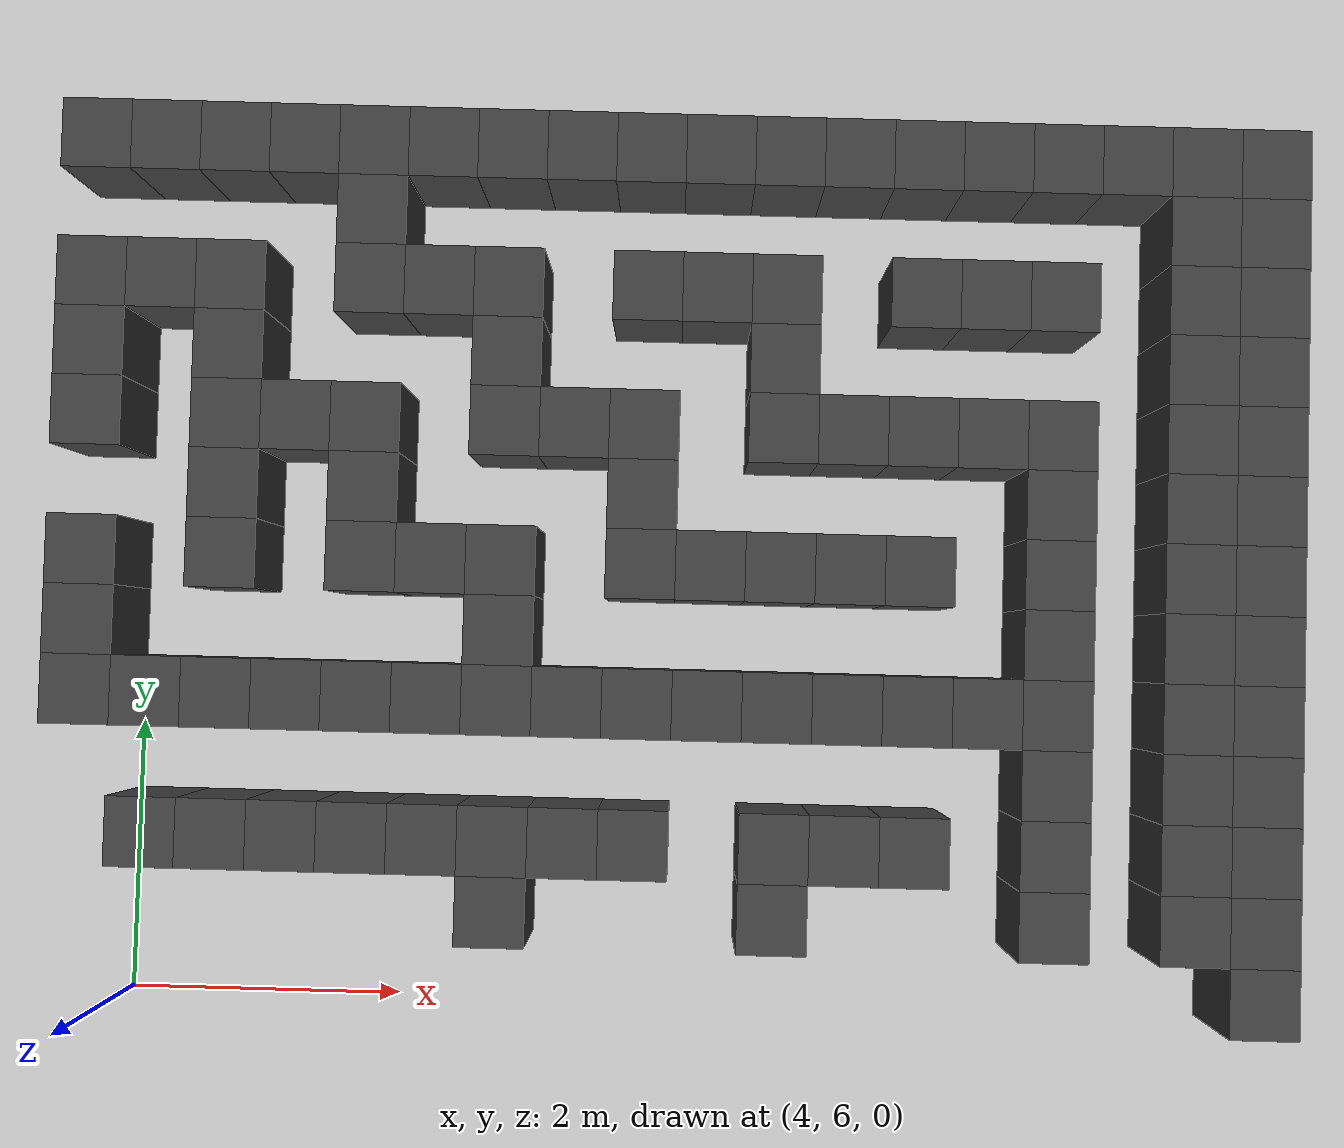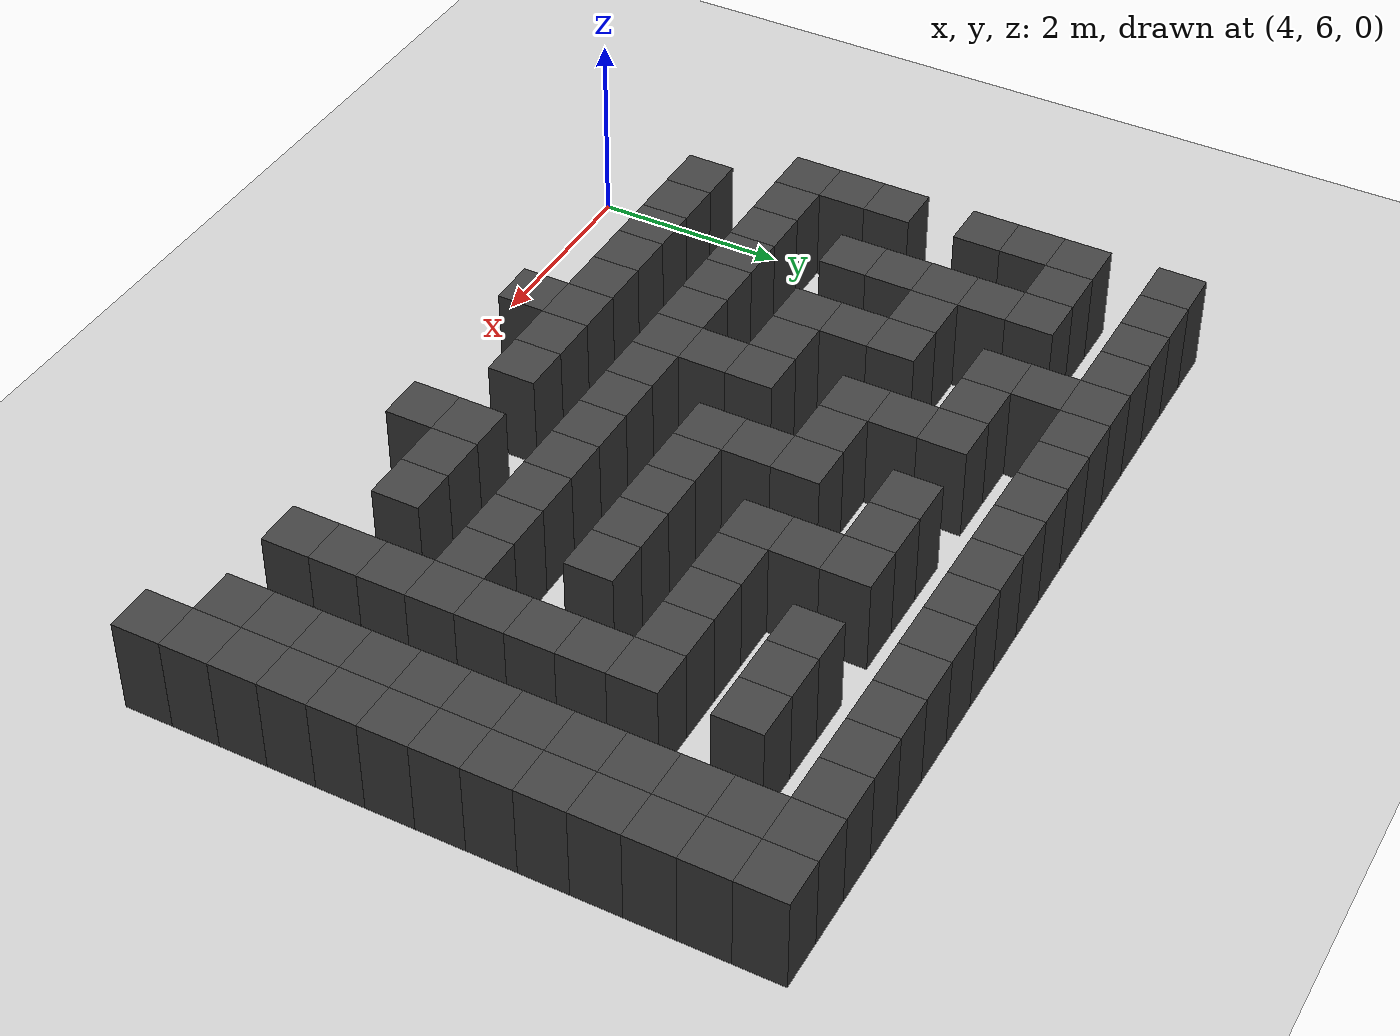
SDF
<sdf version="1.7">
 <world name="map_18914">
  <model name="ground_plane">
   <static>true</static>
   <link name="link">
    <collision name="collision">
     <geometry><plane><normal>0 0 1</normal><size>200 200</size></plane></geometry>
    </collision>
    <visual name="visual">
     <geometry><plane><normal>0 0 1</normal><size>200 200</size></plane></geometry>
     <material><ambient>0.8 0.8 0.8 1</ambient><diffuse>0.8 0.8 0.8 1</diffuse></material>
    </visual>
   </link>
  </model>
  <model name="maze_environment">
   <static>true</static>
   <link name="wall_32">
    <pose>3.750 12.250 0.500 0 0 0</pose>
    <collision name="col"><geometry><box><size>0.5 0.5 1.0</size></box></geometry></collision>
    <visual name="vis">
     <geometry><box><size>0.5 0.5 1.0</size></box></geometry>
     <material><ambient>0.15 0.15 0.15 1</ambient><diffuse>0.25 0.25 0.25 1</diffuse></material>
    </visual>
   </link>
   <link name="wall_33">
    <pose>4.250 12.250 0.500 0 0 0</pose>
    <collision name="col"><geometry><box><size>0.5 0.5 1.0</size></box></geometry></collision>
    <visual name="vis">
     <geometry><box><size>0.5 0.5 1.0</size></box></geometry>
     <material><ambient>0.15 0.15 0.15 1</ambient><diffuse>0.25 0.25 0.25 1</diffuse></material>
    </visual>
   </link>
   <link name="wall_34">
    <pose>4.750 12.250 0.500 0 0 0</pose>
    <collision name="col"><geometry><box><size>0.5 0.5 1.0</size></box></geometry></collision>
    <visual name="vis">
     <geometry><box><size>0.5 0.5 1.0</size></box></geometry>
     <material><ambient>0.15 0.15 0.15 1</ambient><diffuse>0.25 0.25 0.25 1</diffuse></material>
    </visual>
   </link>
   <link name="wall_35">
    <pose>5.250 12.250 0.500 0 0 0</pose>
    <collision name="col"><geometry><box><size>0.5 0.5 1.0</size></box></geometry></collision>
    <visual name="vis">
     <geometry><box><size>0.5 0.5 1.0</size></box></geometry>
     <material><ambient>0.15 0.15 0.15 1</ambient><diffuse>0.25 0.25 0.25 1</diffuse></material>
    </visual>
   </link>
   <link name="wall_36">
    <pose>5.750 12.250 0.500 0 0 0</pose>
    <collision name="col"><geometry><box><size>0.5 0.5 1.0</size></box></geometry></collision>
    <visual name="vis">
     <geometry><box><size>0.5 0.5 1.0</size></box></geometry>
     <material><ambient>0.15 0.15 0.15 1</ambient><diffuse>0.25 0.25 0.25 1</diffuse></material>
    </visual>
   </link>
   <link name="wall_37">
    <pose>6.250 12.250 0.500 0 0 0</pose>
    <collision name="col"><geometry><box><size>0.5 0.5 1.0</size></box></geometry></collision>
    <visual name="vis">
     <geometry><box><size>0.5 0.5 1.0</size></box></geometry>
     <material><ambient>0.15 0.15 0.15 1</ambient><diffuse>0.25 0.25 0.25 1</diffuse></material>
    </visual>
   </link>
   <link name="wall_38">
    <pose>6.750 12.250 0.500 0 0 0</pose>
    <collision name="col"><geometry><box><size>0.5 0.5 1.0</size></box></geometry></collision>
    <visual name="vis">
     <geometry><box><size>0.5 0.5 1.0</size></box></geometry>
     <material><ambient>0.15 0.15 0.15 1</ambient><diffuse>0.25 0.25 0.25 1</diffuse></material>
    </visual>
   </link>
   <link name="wall_39">
    <pose>7.250 12.250 0.500 0 0 0</pose>
    <collision name="col"><geometry><box><size>0.5 0.5 1.0</size></box></geometry></collision>
    <visual name="vis">
     <geometry><box><size>0.5 0.5 1.0</size></box></geometry>
     <material><ambient>0.15 0.15 0.15 1</ambient><diffuse>0.25 0.25 0.25 1</diffuse></material>
    </visual>
   </link>
   <link name="wall_40">
    <pose>7.750 12.250 0.500 0 0 0</pose>
    <collision name="col"><geometry><box><size>0.5 0.5 1.0</size></box></geometry></collision>
    <visual name="vis">
     <geometry><box><size>0.5 0.5 1.0</size></box></geometry>
     <material><ambient>0.15 0.15 0.15 1</ambient><diffuse>0.25 0.25 0.25 1</diffuse></material>
    </visual>
   </link>
   <link name="wall_41">
    <pose>8.250 12.250 0.500 0 0 0</pose>
    <collision name="col"><geometry><box><size>0.5 0.5 1.0</size></box></geometry></collision>
    <visual name="vis">
     <geometry><box><size>0.5 0.5 1.0</size></box></geometry>
     <material><ambient>0.15 0.15 0.15 1</ambient><diffuse>0.25 0.25 0.25 1</diffuse></material>
    </visual>
   </link>
   <link name="wall_42">
    <pose>8.750 12.250 0.500 0 0 0</pose>
    <collision name="col"><geometry><box><size>0.5 0.5 1.0</size></box></geometry></collision>
    <visual name="vis">
     <geometry><box><size>0.5 0.5 1.0</size></box></geometry>
     <material><ambient>0.15 0.15 0.15 1</ambient><diffuse>0.25 0.25 0.25 1</diffuse></material>
    </visual>
   </link>
   <link name="wall_43">
    <pose>9.250 12.250 0.500 0 0 0</pose>
    <collision name="col"><geometry><box><size>0.5 0.5 1.0</size></box></geometry></collision>
    <visual name="vis">
     <geometry><box><size>0.5 0.5 1.0</size></box></geometry>
     <material><ambient>0.15 0.15 0.15 1</ambient><diffuse>0.25 0.25 0.25 1</diffuse></material>
    </visual>
   </link>
   <link name="wall_44">
    <pose>9.750 12.250 0.500 0 0 0</pose>
    <collision name="col"><geometry><box><size>0.5 0.5 1.0</size></box></geometry></collision>
    <visual name="vis">
     <geometry><box><size>0.5 0.5 1.0</size></box></geometry>
     <material><ambient>0.15 0.15 0.15 1</ambient><diffuse>0.25 0.25 0.25 1</diffuse></material>
    </visual>
   </link>
   <link name="wall_45">
    <pose>10.250 12.250 0.500 0 0 0</pose>
    <collision name="col"><geometry><box><size>0.5 0.5 1.0</size></box></geometry></collision>
    <visual name="vis">
     <geometry><box><size>0.5 0.5 1.0</size></box></geometry>
     <material><ambient>0.15 0.15 0.15 1</ambient><diffuse>0.25 0.25 0.25 1</diffuse></material>
    </visual>
   </link>
   <link name="wall_46">
    <pose>10.750 12.250 0.500 0 0 0</pose>
    <collision name="col"><geometry><box><size>0.5 0.5 1.0</size></box></geometry></collision>
    <visual name="vis">
     <geometry><box><size>0.5 0.5 1.0</size></box></geometry>
     <material><ambient>0.15 0.15 0.15 1</ambient><diffuse>0.25 0.25 0.25 1</diffuse></material>
    </visual>
   </link>
   <link name="wall_47">
    <pose>11.250 12.250 0.500 0 0 0</pose>
    <collision name="col"><geometry><box><size>0.5 0.5 1.0</size></box></geometry></collision>
    <visual name="vis">
     <geometry><box><size>0.5 0.5 1.0</size></box></geometry>
     <material><ambient>0.15 0.15 0.15 1</ambient><diffuse>0.25 0.25 0.25 1</diffuse></material>
    </visual>
   </link>
   <link name="wall_48">
    <pose>11.750 12.250 0.500 0 0 0</pose>
    <collision name="col"><geometry><box><size>0.5 0.5 1.0</size></box></geometry></collision>
    <visual name="vis">
     <geometry><box><size>0.5 0.5 1.0</size></box></geometry>
     <material><ambient>0.15 0.15 0.15 1</ambient><diffuse>0.25 0.25 0.25 1</diffuse></material>
    </visual>
   </link>
   <link name="wall_49">
    <pose>12.250 12.250 0.500 0 0 0</pose>
    <collision name="col"><geometry><box><size>0.5 0.5 1.0</size></box></geometry></collision>
    <visual name="vis">
     <geometry><box><size>0.5 0.5 1.0</size></box></geometry>
     <material><ambient>0.15 0.15 0.15 1</ambient><diffuse>0.25 0.25 0.25 1</diffuse></material>
    </visual>
   </link>
   <link name="wall_54">
    <pose>5.750 11.750 0.500 0 0 0</pose>
    <collision name="col"><geometry><box><size>0.5 0.5 1.0</size></box></geometry></collision>
    <visual name="vis">
     <geometry><box><size>0.5 0.5 1.0</size></box></geometry>
     <material><ambient>0.15 0.15 0.15 1</ambient><diffuse>0.25 0.25 0.25 1</diffuse></material>
    </visual>
   </link>
   <link name="wall_55">
    <pose>11.750 11.750 0.500 0 0 0</pose>
    <collision name="col"><geometry><box><size>0.5 0.5 1.0</size></box></geometry></collision>
    <visual name="vis">
     <geometry><box><size>0.5 0.5 1.0</size></box></geometry>
     <material><ambient>0.15 0.15 0.15 1</ambient><diffuse>0.25 0.25 0.25 1</diffuse></material>
    </visual>
   </link>
   <link name="wall_56">
    <pose>12.250 11.750 0.500 0 0 0</pose>
    <collision name="col"><geometry><box><size>0.5 0.5 1.0</size></box></geometry></collision>
    <visual name="vis">
     <geometry><box><size>0.5 0.5 1.0</size></box></geometry>
     <material><ambient>0.15 0.15 0.15 1</ambient><diffuse>0.25 0.25 0.25 1</diffuse></material>
    </visual>
   </link>
   <link name="wall_81">
    <pose>3.750 11.250 0.500 0 0 0</pose>
    <collision name="col"><geometry><box><size>0.5 0.5 1.0</size></box></geometry></collision>
    <visual name="vis">
     <geometry><box><size>0.5 0.5 1.0</size></box></geometry>
     <material><ambient>0.15 0.15 0.15 1</ambient><diffuse>0.25 0.25 0.25 1</diffuse></material>
    </visual>
   </link>
   <link name="wall_82">
    <pose>4.250 11.250 0.500 0 0 0</pose>
    <collision name="col"><geometry><box><size>0.5 0.5 1.0</size></box></geometry></collision>
    <visual name="vis">
     <geometry><box><size>0.5 0.5 1.0</size></box></geometry>
     <material><ambient>0.15 0.15 0.15 1</ambient><diffuse>0.25 0.25 0.25 1</diffuse></material>
    </visual>
   </link>
   <link name="wall_83">
    <pose>4.750 11.250 0.500 0 0 0</pose>
    <collision name="col"><geometry><box><size>0.5 0.5 1.0</size></box></geometry></collision>
    <visual name="vis">
     <geometry><box><size>0.5 0.5 1.0</size></box></geometry>
     <material><ambient>0.15 0.15 0.15 1</ambient><diffuse>0.25 0.25 0.25 1</diffuse></material>
    </visual>
   </link>
   <link name="wall_84">
    <pose>5.750 11.250 0.500 0 0 0</pose>
    <collision name="col"><geometry><box><size>0.5 0.5 1.0</size></box></geometry></collision>
    <visual name="vis">
     <geometry><box><size>0.5 0.5 1.0</size></box></geometry>
     <material><ambient>0.15 0.15 0.15 1</ambient><diffuse>0.25 0.25 0.25 1</diffuse></material>
    </visual>
   </link>
   <link name="wall_85">
    <pose>6.250 11.250 0.500 0 0 0</pose>
    <collision name="col"><geometry><box><size>0.5 0.5 1.0</size></box></geometry></collision>
    <visual name="vis">
     <geometry><box><size>0.5 0.5 1.0</size></box></geometry>
     <material><ambient>0.15 0.15 0.15 1</ambient><diffuse>0.25 0.25 0.25 1</diffuse></material>
    </visual>
   </link>
   <link name="wall_86">
    <pose>6.750 11.250 0.500 0 0 0</pose>
    <collision name="col"><geometry><box><size>0.5 0.5 1.0</size></box></geometry></collision>
    <visual name="vis">
     <geometry><box><size>0.5 0.5 1.0</size></box></geometry>
     <material><ambient>0.15 0.15 0.15 1</ambient><diffuse>0.25 0.25 0.25 1</diffuse></material>
    </visual>
   </link>
   <link name="wall_87">
    <pose>7.750 11.250 0.500 0 0 0</pose>
    <collision name="col"><geometry><box><size>0.5 0.5 1.0</size></box></geometry></collision>
    <visual name="vis">
     <geometry><box><size>0.5 0.5 1.0</size></box></geometry>
     <material><ambient>0.15 0.15 0.15 1</ambient><diffuse>0.25 0.25 0.25 1</diffuse></material>
    </visual>
   </link>
   <link name="wall_88">
    <pose>8.250 11.250 0.500 0 0 0</pose>
    <collision name="col"><geometry><box><size>0.5 0.5 1.0</size></box></geometry></collision>
    <visual name="vis">
     <geometry><box><size>0.5 0.5 1.0</size></box></geometry>
     <material><ambient>0.15 0.15 0.15 1</ambient><diffuse>0.25 0.25 0.25 1</diffuse></material>
    </visual>
   </link>
   <link name="wall_89">
    <pose>8.750 11.250 0.500 0 0 0</pose>
    <collision name="col"><geometry><box><size>0.5 0.5 1.0</size></box></geometry></collision>
    <visual name="vis">
     <geometry><box><size>0.5 0.5 1.0</size></box></geometry>
     <material><ambient>0.15 0.15 0.15 1</ambient><diffuse>0.25 0.25 0.25 1</diffuse></material>
    </visual>
   </link>
   <link name="wall_90">
    <pose>9.750 11.250 0.500 0 0 0</pose>
    <collision name="col"><geometry><box><size>0.5 0.5 1.0</size></box></geometry></collision>
    <visual name="vis">
     <geometry><box><size>0.5 0.5 1.0</size></box></geometry>
     <material><ambient>0.15 0.15 0.15 1</ambient><diffuse>0.25 0.25 0.25 1</diffuse></material>
    </visual>
   </link>
   <link name="wall_91">
    <pose>10.250 11.250 0.500 0 0 0</pose>
    <collision name="col"><geometry><box><size>0.5 0.5 1.0</size></box></geometry></collision>
    <visual name="vis">
     <geometry><box><size>0.5 0.5 1.0</size></box></geometry>
     <material><ambient>0.15 0.15 0.15 1</ambient><diffuse>0.25 0.25 0.25 1</diffuse></material>
    </visual>
   </link>
   <link name="wall_92">
    <pose>10.750 11.250 0.500 0 0 0</pose>
    <collision name="col"><geometry><box><size>0.5 0.5 1.0</size></box></geometry></collision>
    <visual name="vis">
     <geometry><box><size>0.5 0.5 1.0</size></box></geometry>
     <material><ambient>0.15 0.15 0.15 1</ambient><diffuse>0.25 0.25 0.25 1</diffuse></material>
    </visual>
   </link>
   <link name="wall_93">
    <pose>11.750 11.250 0.500 0 0 0</pose>
    <collision name="col"><geometry><box><size>0.5 0.5 1.0</size></box></geometry></collision>
    <visual name="vis">
     <geometry><box><size>0.5 0.5 1.0</size></box></geometry>
     <material><ambient>0.15 0.15 0.15 1</ambient><diffuse>0.25 0.25 0.25 1</diffuse></material>
    </visual>
   </link>
   <link name="wall_94">
    <pose>12.250 11.250 0.500 0 0 0</pose>
    <collision name="col"><geometry><box><size>0.5 0.5 1.0</size></box></geometry></collision>
    <visual name="vis">
     <geometry><box><size>0.5 0.5 1.0</size></box></geometry>
     <material><ambient>0.15 0.15 0.15 1</ambient><diffuse>0.25 0.25 0.25 1</diffuse></material>
    </visual>
   </link>
   <link name="wall_102">
    <pose>3.750 10.750 0.500 0 0 0</pose>
    <collision name="col"><geometry><box><size>0.5 0.5 1.0</size></box></geometry></collision>
    <visual name="vis">
     <geometry><box><size>0.5 0.5 1.0</size></box></geometry>
     <material><ambient>0.15 0.15 0.15 1</ambient><diffuse>0.25 0.25 0.25 1</diffuse></material>
    </visual>
   </link>
   <link name="wall_103">
    <pose>4.750 10.750 0.500 0 0 0</pose>
    <collision name="col"><geometry><box><size>0.5 0.5 1.0</size></box></geometry></collision>
    <visual name="vis">
     <geometry><box><size>0.5 0.5 1.0</size></box></geometry>
     <material><ambient>0.15 0.15 0.15 1</ambient><diffuse>0.25 0.25 0.25 1</diffuse></material>
    </visual>
   </link>
   <link name="wall_104">
    <pose>6.750 10.750 0.500 0 0 0</pose>
    <collision name="col"><geometry><box><size>0.5 0.5 1.0</size></box></geometry></collision>
    <visual name="vis">
     <geometry><box><size>0.5 0.5 1.0</size></box></geometry>
     <material><ambient>0.15 0.15 0.15 1</ambient><diffuse>0.25 0.25 0.25 1</diffuse></material>
    </visual>
   </link>
   <link name="wall_105">
    <pose>8.750 10.750 0.500 0 0 0</pose>
    <collision name="col"><geometry><box><size>0.5 0.5 1.0</size></box></geometry></collision>
    <visual name="vis">
     <geometry><box><size>0.5 0.5 1.0</size></box></geometry>
     <material><ambient>0.15 0.15 0.15 1</ambient><diffuse>0.25 0.25 0.25 1</diffuse></material>
    </visual>
   </link>
   <link name="wall_106">
    <pose>11.750 10.750 0.500 0 0 0</pose>
    <collision name="col"><geometry><box><size>0.5 0.5 1.0</size></box></geometry></collision>
    <visual name="vis">
     <geometry><box><size>0.5 0.5 1.0</size></box></geometry>
     <material><ambient>0.15 0.15 0.15 1</ambient><diffuse>0.25 0.25 0.25 1</diffuse></material>
    </visual>
   </link>
   <link name="wall_107">
    <pose>12.250 10.750 0.500 0 0 0</pose>
    <collision name="col"><geometry><box><size>0.5 0.5 1.0</size></box></geometry></collision>
    <visual name="vis">
     <geometry><box><size>0.5 0.5 1.0</size></box></geometry>
     <material><ambient>0.15 0.15 0.15 1</ambient><diffuse>0.25 0.25 0.25 1</diffuse></material>
    </visual>
   </link>
   <link name="wall_135">
    <pose>3.750 10.250 0.500 0 0 0</pose>
    <collision name="col"><geometry><box><size>0.5 0.5 1.0</size></box></geometry></collision>
    <visual name="vis">
     <geometry><box><size>0.5 0.5 1.0</size></box></geometry>
     <material><ambient>0.15 0.15 0.15 1</ambient><diffuse>0.25 0.25 0.25 1</diffuse></material>
    </visual>
   </link>
   <link name="wall_136">
    <pose>4.750 10.250 0.500 0 0 0</pose>
    <collision name="col"><geometry><box><size>0.5 0.5 1.0</size></box></geometry></collision>
    <visual name="vis">
     <geometry><box><size>0.5 0.5 1.0</size></box></geometry>
     <material><ambient>0.15 0.15 0.15 1</ambient><diffuse>0.25 0.25 0.25 1</diffuse></material>
    </visual>
   </link>
   <link name="wall_137">
    <pose>5.250 10.250 0.500 0 0 0</pose>
    <collision name="col"><geometry><box><size>0.5 0.5 1.0</size></box></geometry></collision>
    <visual name="vis">
     <geometry><box><size>0.5 0.5 1.0</size></box></geometry>
     <material><ambient>0.15 0.15 0.15 1</ambient><diffuse>0.25 0.25 0.25 1</diffuse></material>
    </visual>
   </link>
   <link name="wall_138">
    <pose>5.750 10.250 0.500 0 0 0</pose>
    <collision name="col"><geometry><box><size>0.5 0.5 1.0</size></box></geometry></collision>
    <visual name="vis">
     <geometry><box><size>0.5 0.5 1.0</size></box></geometry>
     <material><ambient>0.15 0.15 0.15 1</ambient><diffuse>0.25 0.25 0.25 1</diffuse></material>
    </visual>
   </link>
   <link name="wall_139">
    <pose>6.750 10.250 0.500 0 0 0</pose>
    <collision name="col"><geometry><box><size>0.5 0.5 1.0</size></box></geometry></collision>
    <visual name="vis">
     <geometry><box><size>0.5 0.5 1.0</size></box></geometry>
     <material><ambient>0.15 0.15 0.15 1</ambient><diffuse>0.25 0.25 0.25 1</diffuse></material>
    </visual>
   </link>
   <link name="wall_140">
    <pose>7.250 10.250 0.500 0 0 0</pose>
    <collision name="col"><geometry><box><size>0.5 0.5 1.0</size></box></geometry></collision>
    <visual name="vis">
     <geometry><box><size>0.5 0.5 1.0</size></box></geometry>
     <material><ambient>0.15 0.15 0.15 1</ambient><diffuse>0.25 0.25 0.25 1</diffuse></material>
    </visual>
   </link>
   <link name="wall_141">
    <pose>7.750 10.250 0.500 0 0 0</pose>
    <collision name="col"><geometry><box><size>0.5 0.5 1.0</size></box></geometry></collision>
    <visual name="vis">
     <geometry><box><size>0.5 0.5 1.0</size></box></geometry>
     <material><ambient>0.15 0.15 0.15 1</ambient><diffuse>0.25 0.25 0.25 1</diffuse></material>
    </visual>
   </link>
   <link name="wall_142">
    <pose>8.750 10.250 0.500 0 0 0</pose>
    <collision name="col"><geometry><box><size>0.5 0.5 1.0</size></box></geometry></collision>
    <visual name="vis">
     <geometry><box><size>0.5 0.5 1.0</size></box></geometry>
     <material><ambient>0.15 0.15 0.15 1</ambient><diffuse>0.25 0.25 0.25 1</diffuse></material>
    </visual>
   </link>
   <link name="wall_143">
    <pose>9.250 10.250 0.500 0 0 0</pose>
    <collision name="col"><geometry><box><size>0.5 0.5 1.0</size></box></geometry></collision>
    <visual name="vis">
     <geometry><box><size>0.5 0.5 1.0</size></box></geometry>
     <material><ambient>0.15 0.15 0.15 1</ambient><diffuse>0.25 0.25 0.25 1</diffuse></material>
    </visual>
   </link>
   <link name="wall_144">
    <pose>9.750 10.250 0.500 0 0 0</pose>
    <collision name="col"><geometry><box><size>0.5 0.5 1.0</size></box></geometry></collision>
    <visual name="vis">
     <geometry><box><size>0.5 0.5 1.0</size></box></geometry>
     <material><ambient>0.15 0.15 0.15 1</ambient><diffuse>0.25 0.25 0.25 1</diffuse></material>
    </visual>
   </link>
   <link name="wall_145">
    <pose>10.250 10.250 0.500 0 0 0</pose>
    <collision name="col"><geometry><box><size>0.5 0.5 1.0</size></box></geometry></collision>
    <visual name="vis">
     <geometry><box><size>0.5 0.5 1.0</size></box></geometry>
     <material><ambient>0.15 0.15 0.15 1</ambient><diffuse>0.25 0.25 0.25 1</diffuse></material>
    </visual>
   </link>
   <link name="wall_146">
    <pose>10.750 10.250 0.500 0 0 0</pose>
    <collision name="col"><geometry><box><size>0.5 0.5 1.0</size></box></geometry></collision>
    <visual name="vis">
     <geometry><box><size>0.5 0.5 1.0</size></box></geometry>
     <material><ambient>0.15 0.15 0.15 1</ambient><diffuse>0.25 0.25 0.25 1</diffuse></material>
    </visual>
   </link>
   <link name="wall_147">
    <pose>11.750 10.250 0.500 0 0 0</pose>
    <collision name="col"><geometry><box><size>0.5 0.5 1.0</size></box></geometry></collision>
    <visual name="vis">
     <geometry><box><size>0.5 0.5 1.0</size></box></geometry>
     <material><ambient>0.15 0.15 0.15 1</ambient><diffuse>0.25 0.25 0.25 1</diffuse></material>
    </visual>
   </link>
   <link name="wall_148">
    <pose>12.250 10.250 0.500 0 0 0</pose>
    <collision name="col"><geometry><box><size>0.5 0.5 1.0</size></box></geometry></collision>
    <visual name="vis">
     <geometry><box><size>0.5 0.5 1.0</size></box></geometry>
     <material><ambient>0.15 0.15 0.15 1</ambient><diffuse>0.25 0.25 0.25 1</diffuse></material>
    </visual>
   </link>
   <link name="wall_153">
    <pose>4.750 9.750 0.500 0 0 0</pose>
    <collision name="col"><geometry><box><size>0.5 0.5 1.0</size></box></geometry></collision>
    <visual name="vis">
     <geometry><box><size>0.5 0.5 1.0</size></box></geometry>
     <material><ambient>0.15 0.15 0.15 1</ambient><diffuse>0.25 0.25 0.25 1</diffuse></material>
    </visual>
   </link>
   <link name="wall_154">
    <pose>5.750 9.750 0.500 0 0 0</pose>
    <collision name="col"><geometry><box><size>0.5 0.5 1.0</size></box></geometry></collision>
    <visual name="vis">
     <geometry><box><size>0.5 0.5 1.0</size></box></geometry>
     <material><ambient>0.15 0.15 0.15 1</ambient><diffuse>0.25 0.25 0.25 1</diffuse></material>
    </visual>
   </link>
   <link name="wall_155">
    <pose>7.750 9.750 0.500 0 0 0</pose>
    <collision name="col"><geometry><box><size>0.5 0.5 1.0</size></box></geometry></collision>
    <visual name="vis">
     <geometry><box><size>0.5 0.5 1.0</size></box></geometry>
     <material><ambient>0.15 0.15 0.15 1</ambient><diffuse>0.25 0.25 0.25 1</diffuse></material>
    </visual>
   </link>
   <link name="wall_156">
    <pose>10.750 9.750 0.500 0 0 0</pose>
    <collision name="col"><geometry><box><size>0.5 0.5 1.0</size></box></geometry></collision>
    <visual name="vis">
     <geometry><box><size>0.5 0.5 1.0</size></box></geometry>
     <material><ambient>0.15 0.15 0.15 1</ambient><diffuse>0.25 0.25 0.25 1</diffuse></material>
    </visual>
   </link>
   <link name="wall_157">
    <pose>11.750 9.750 0.500 0 0 0</pose>
    <collision name="col"><geometry><box><size>0.5 0.5 1.0</size></box></geometry></collision>
    <visual name="vis">
     <geometry><box><size>0.5 0.5 1.0</size></box></geometry>
     <material><ambient>0.15 0.15 0.15 1</ambient><diffuse>0.25 0.25 0.25 1</diffuse></material>
    </visual>
   </link>
   <link name="wall_158">
    <pose>12.250 9.750 0.500 0 0 0</pose>
    <collision name="col"><geometry><box><size>0.5 0.5 1.0</size></box></geometry></collision>
    <visual name="vis">
     <geometry><box><size>0.5 0.5 1.0</size></box></geometry>
     <material><ambient>0.15 0.15 0.15 1</ambient><diffuse>0.25 0.25 0.25 1</diffuse></material>
    </visual>
   </link>
   <link name="wall_184">
    <pose>3.750 9.250 0.500 0 0 0</pose>
    <collision name="col"><geometry><box><size>0.5 0.5 1.0</size></box></geometry></collision>
    <visual name="vis">
     <geometry><box><size>0.5 0.5 1.0</size></box></geometry>
     <material><ambient>0.15 0.15 0.15 1</ambient><diffuse>0.25 0.25 0.25 1</diffuse></material>
    </visual>
   </link>
   <link name="wall_185">
    <pose>4.750 9.250 0.500 0 0 0</pose>
    <collision name="col"><geometry><box><size>0.5 0.5 1.0</size></box></geometry></collision>
    <visual name="vis">
     <geometry><box><size>0.5 0.5 1.0</size></box></geometry>
     <material><ambient>0.15 0.15 0.15 1</ambient><diffuse>0.25 0.25 0.25 1</diffuse></material>
    </visual>
   </link>
   <link name="wall_186">
    <pose>5.750 9.250 0.500 0 0 0</pose>
    <collision name="col"><geometry><box><size>0.5 0.5 1.0</size></box></geometry></collision>
    <visual name="vis">
     <geometry><box><size>0.5 0.5 1.0</size></box></geometry>
     <material><ambient>0.15 0.15 0.15 1</ambient><diffuse>0.25 0.25 0.25 1</diffuse></material>
    </visual>
   </link>
   <link name="wall_187">
    <pose>6.250 9.250 0.500 0 0 0</pose>
    <collision name="col"><geometry><box><size>0.5 0.5 1.0</size></box></geometry></collision>
    <visual name="vis">
     <geometry><box><size>0.5 0.5 1.0</size></box></geometry>
     <material><ambient>0.15 0.15 0.15 1</ambient><diffuse>0.25 0.25 0.25 1</diffuse></material>
    </visual>
   </link>
   <link name="wall_188">
    <pose>6.750 9.250 0.500 0 0 0</pose>
    <collision name="col"><geometry><box><size>0.5 0.5 1.0</size></box></geometry></collision>
    <visual name="vis">
     <geometry><box><size>0.5 0.5 1.0</size></box></geometry>
     <material><ambient>0.15 0.15 0.15 1</ambient><diffuse>0.25 0.25 0.25 1</diffuse></material>
    </visual>
   </link>
   <link name="wall_189">
    <pose>7.750 9.250 0.500 0 0 0</pose>
    <collision name="col"><geometry><box><size>0.5 0.5 1.0</size></box></geometry></collision>
    <visual name="vis">
     <geometry><box><size>0.5 0.5 1.0</size></box></geometry>
     <material><ambient>0.15 0.15 0.15 1</ambient><diffuse>0.25 0.25 0.25 1</diffuse></material>
    </visual>
   </link>
   <link name="wall_190">
    <pose>8.250 9.250 0.500 0 0 0</pose>
    <collision name="col"><geometry><box><size>0.5 0.5 1.0</size></box></geometry></collision>
    <visual name="vis">
     <geometry><box><size>0.5 0.5 1.0</size></box></geometry>
     <material><ambient>0.15 0.15 0.15 1</ambient><diffuse>0.25 0.25 0.25 1</diffuse></material>
    </visual>
   </link>
   <link name="wall_191">
    <pose>8.750 9.250 0.500 0 0 0</pose>
    <collision name="col"><geometry><box><size>0.5 0.5 1.0</size></box></geometry></collision>
    <visual name="vis">
     <geometry><box><size>0.5 0.5 1.0</size></box></geometry>
     <material><ambient>0.15 0.15 0.15 1</ambient><diffuse>0.25 0.25 0.25 1</diffuse></material>
    </visual>
   </link>
   <link name="wall_192">
    <pose>9.250 9.250 0.500 0 0 0</pose>
    <collision name="col"><geometry><box><size>0.5 0.5 1.0</size></box></geometry></collision>
    <visual name="vis">
     <geometry><box><size>0.5 0.5 1.0</size></box></geometry>
     <material><ambient>0.15 0.15 0.15 1</ambient><diffuse>0.25 0.25 0.25 1</diffuse></material>
    </visual>
   </link>
   <link name="wall_193">
    <pose>9.750 9.250 0.500 0 0 0</pose>
    <collision name="col"><geometry><box><size>0.5 0.5 1.0</size></box></geometry></collision>
    <visual name="vis">
     <geometry><box><size>0.5 0.5 1.0</size></box></geometry>
     <material><ambient>0.15 0.15 0.15 1</ambient><diffuse>0.25 0.25 0.25 1</diffuse></material>
    </visual>
   </link>
   <link name="wall_194">
    <pose>10.750 9.250 0.500 0 0 0</pose>
    <collision name="col"><geometry><box><size>0.5 0.5 1.0</size></box></geometry></collision>
    <visual name="vis">
     <geometry><box><size>0.5 0.5 1.0</size></box></geometry>
     <material><ambient>0.15 0.15 0.15 1</ambient><diffuse>0.25 0.25 0.25 1</diffuse></material>
    </visual>
   </link>
   <link name="wall_195">
    <pose>11.750 9.250 0.500 0 0 0</pose>
    <collision name="col"><geometry><box><size>0.5 0.5 1.0</size></box></geometry></collision>
    <visual name="vis">
     <geometry><box><size>0.5 0.5 1.0</size></box></geometry>
     <material><ambient>0.15 0.15 0.15 1</ambient><diffuse>0.25 0.25 0.25 1</diffuse></material>
    </visual>
   </link>
   <link name="wall_196">
    <pose>12.250 9.250 0.500 0 0 0</pose>
    <collision name="col"><geometry><box><size>0.5 0.5 1.0</size></box></geometry></collision>
    <visual name="vis">
     <geometry><box><size>0.5 0.5 1.0</size></box></geometry>
     <material><ambient>0.15 0.15 0.15 1</ambient><diffuse>0.25 0.25 0.25 1</diffuse></material>
    </visual>
   </link>
   <link name="wall_204">
    <pose>3.750 8.750 0.500 0 0 0</pose>
    <collision name="col"><geometry><box><size>0.5 0.5 1.0</size></box></geometry></collision>
    <visual name="vis">
     <geometry><box><size>0.5 0.5 1.0</size></box></geometry>
     <material><ambient>0.15 0.15 0.15 1</ambient><diffuse>0.25 0.25 0.25 1</diffuse></material>
    </visual>
   </link>
   <link name="wall_205">
    <pose>6.750 8.750 0.500 0 0 0</pose>
    <collision name="col"><geometry><box><size>0.5 0.5 1.0</size></box></geometry></collision>
    <visual name="vis">
     <geometry><box><size>0.5 0.5 1.0</size></box></geometry>
     <material><ambient>0.15 0.15 0.15 1</ambient><diffuse>0.25 0.25 0.25 1</diffuse></material>
    </visual>
   </link>
   <link name="wall_206">
    <pose>10.750 8.750 0.500 0 0 0</pose>
    <collision name="col"><geometry><box><size>0.5 0.5 1.0</size></box></geometry></collision>
    <visual name="vis">
     <geometry><box><size>0.5 0.5 1.0</size></box></geometry>
     <material><ambient>0.15 0.15 0.15 1</ambient><diffuse>0.25 0.25 0.25 1</diffuse></material>
    </visual>
   </link>
   <link name="wall_207">
    <pose>11.750 8.750 0.500 0 0 0</pose>
    <collision name="col"><geometry><box><size>0.5 0.5 1.0</size></box></geometry></collision>
    <visual name="vis">
     <geometry><box><size>0.5 0.5 1.0</size></box></geometry>
     <material><ambient>0.15 0.15 0.15 1</ambient><diffuse>0.25 0.25 0.25 1</diffuse></material>
    </visual>
   </link>
   <link name="wall_208">
    <pose>12.250 8.750 0.500 0 0 0</pose>
    <collision name="col"><geometry><box><size>0.5 0.5 1.0</size></box></geometry></collision>
    <visual name="vis">
     <geometry><box><size>0.5 0.5 1.0</size></box></geometry>
     <material><ambient>0.15 0.15 0.15 1</ambient><diffuse>0.25 0.25 0.25 1</diffuse></material>
    </visual>
   </link>
   <link name="wall_234">
    <pose>3.750 8.250 0.500 0 0 0</pose>
    <collision name="col"><geometry><box><size>0.5 0.5 1.0</size></box></geometry></collision>
    <visual name="vis">
     <geometry><box><size>0.5 0.5 1.0</size></box></geometry>
     <material><ambient>0.15 0.15 0.15 1</ambient><diffuse>0.25 0.25 0.25 1</diffuse></material>
    </visual>
   </link>
   <link name="wall_235">
    <pose>4.250 8.250 0.500 0 0 0</pose>
    <collision name="col"><geometry><box><size>0.5 0.5 1.0</size></box></geometry></collision>
    <visual name="vis">
     <geometry><box><size>0.5 0.5 1.0</size></box></geometry>
     <material><ambient>0.15 0.15 0.15 1</ambient><diffuse>0.25 0.25 0.25 1</diffuse></material>
    </visual>
   </link>
   <link name="wall_236">
    <pose>4.750 8.250 0.500 0 0 0</pose>
    <collision name="col"><geometry><box><size>0.5 0.5 1.0</size></box></geometry></collision>
    <visual name="vis">
     <geometry><box><size>0.5 0.5 1.0</size></box></geometry>
     <material><ambient>0.15 0.15 0.15 1</ambient><diffuse>0.25 0.25 0.25 1</diffuse></material>
    </visual>
   </link>
   <link name="wall_237">
    <pose>5.250 8.250 0.500 0 0 0</pose>
    <collision name="col"><geometry><box><size>0.5 0.5 1.0</size></box></geometry></collision>
    <visual name="vis">
     <geometry><box><size>0.5 0.5 1.0</size></box></geometry>
     <material><ambient>0.15 0.15 0.15 1</ambient><diffuse>0.25 0.25 0.25 1</diffuse></material>
    </visual>
   </link>
   <link name="wall_238">
    <pose>5.750 8.250 0.500 0 0 0</pose>
    <collision name="col"><geometry><box><size>0.5 0.5 1.0</size></box></geometry></collision>
    <visual name="vis">
     <geometry><box><size>0.5 0.5 1.0</size></box></geometry>
     <material><ambient>0.15 0.15 0.15 1</ambient><diffuse>0.25 0.25 0.25 1</diffuse></material>
    </visual>
   </link>
   <link name="wall_239">
    <pose>6.250 8.250 0.500 0 0 0</pose>
    <collision name="col"><geometry><box><size>0.5 0.5 1.0</size></box></geometry></collision>
    <visual name="vis">
     <geometry><box><size>0.5 0.5 1.0</size></box></geometry>
     <material><ambient>0.15 0.15 0.15 1</ambient><diffuse>0.25 0.25 0.25 1</diffuse></material>
    </visual>
   </link>
   <link name="wall_240">
    <pose>6.750 8.250 0.500 0 0 0</pose>
    <collision name="col"><geometry><box><size>0.5 0.5 1.0</size></box></geometry></collision>
    <visual name="vis">
     <geometry><box><size>0.5 0.5 1.0</size></box></geometry>
     <material><ambient>0.15 0.15 0.15 1</ambient><diffuse>0.25 0.25 0.25 1</diffuse></material>
    </visual>
   </link>
   <link name="wall_241">
    <pose>7.250 8.250 0.500 0 0 0</pose>
    <collision name="col"><geometry><box><size>0.5 0.5 1.0</size></box></geometry></collision>
    <visual name="vis">
     <geometry><box><size>0.5 0.5 1.0</size></box></geometry>
     <material><ambient>0.15 0.15 0.15 1</ambient><diffuse>0.25 0.25 0.25 1</diffuse></material>
    </visual>
   </link>
   <link name="wall_242">
    <pose>7.750 8.250 0.500 0 0 0</pose>
    <collision name="col"><geometry><box><size>0.5 0.5 1.0</size></box></geometry></collision>
    <visual name="vis">
     <geometry><box><size>0.5 0.5 1.0</size></box></geometry>
     <material><ambient>0.15 0.15 0.15 1</ambient><diffuse>0.25 0.25 0.25 1</diffuse></material>
    </visual>
   </link>
   <link name="wall_243">
    <pose>8.250 8.250 0.500 0 0 0</pose>
    <collision name="col"><geometry><box><size>0.5 0.5 1.0</size></box></geometry></collision>
    <visual name="vis">
     <geometry><box><size>0.5 0.5 1.0</size></box></geometry>
     <material><ambient>0.15 0.15 0.15 1</ambient><diffuse>0.25 0.25 0.25 1</diffuse></material>
    </visual>
   </link>
   <link name="wall_244">
    <pose>8.750 8.250 0.500 0 0 0</pose>
    <collision name="col"><geometry><box><size>0.5 0.5 1.0</size></box></geometry></collision>
    <visual name="vis">
     <geometry><box><size>0.5 0.5 1.0</size></box></geometry>
     <material><ambient>0.15 0.15 0.15 1</ambient><diffuse>0.25 0.25 0.25 1</diffuse></material>
    </visual>
   </link>
   <link name="wall_245">
    <pose>9.250 8.250 0.500 0 0 0</pose>
    <collision name="col"><geometry><box><size>0.5 0.5 1.0</size></box></geometry></collision>
    <visual name="vis">
     <geometry><box><size>0.5 0.5 1.0</size></box></geometry>
     <material><ambient>0.15 0.15 0.15 1</ambient><diffuse>0.25 0.25 0.25 1</diffuse></material>
    </visual>
   </link>
   <link name="wall_246">
    <pose>9.750 8.250 0.500 0 0 0</pose>
    <collision name="col"><geometry><box><size>0.5 0.5 1.0</size></box></geometry></collision>
    <visual name="vis">
     <geometry><box><size>0.5 0.5 1.0</size></box></geometry>
     <material><ambient>0.15 0.15 0.15 1</ambient><diffuse>0.25 0.25 0.25 1</diffuse></material>
    </visual>
   </link>
   <link name="wall_247">
    <pose>10.250 8.250 0.500 0 0 0</pose>
    <collision name="col"><geometry><box><size>0.5 0.5 1.0</size></box></geometry></collision>
    <visual name="vis">
     <geometry><box><size>0.5 0.5 1.0</size></box></geometry>
     <material><ambient>0.15 0.15 0.15 1</ambient><diffuse>0.25 0.25 0.25 1</diffuse></material>
    </visual>
   </link>
   <link name="wall_248">
    <pose>10.750 8.250 0.500 0 0 0</pose>
    <collision name="col"><geometry><box><size>0.5 0.5 1.0</size></box></geometry></collision>
    <visual name="vis">
     <geometry><box><size>0.5 0.5 1.0</size></box></geometry>
     <material><ambient>0.15 0.15 0.15 1</ambient><diffuse>0.25 0.25 0.25 1</diffuse></material>
    </visual>
   </link>
   <link name="wall_249">
    <pose>11.750 8.250 0.500 0 0 0</pose>
    <collision name="col"><geometry><box><size>0.5 0.5 1.0</size></box></geometry></collision>
    <visual name="vis">
     <geometry><box><size>0.5 0.5 1.0</size></box></geometry>
     <material><ambient>0.15 0.15 0.15 1</ambient><diffuse>0.25 0.25 0.25 1</diffuse></material>
    </visual>
   </link>
   <link name="wall_250">
    <pose>12.250 8.250 0.500 0 0 0</pose>
    <collision name="col"><geometry><box><size>0.5 0.5 1.0</size></box></geometry></collision>
    <visual name="vis">
     <geometry><box><size>0.5 0.5 1.0</size></box></geometry>
     <material><ambient>0.15 0.15 0.15 1</ambient><diffuse>0.25 0.25 0.25 1</diffuse></material>
    </visual>
   </link>
   <link name="wall_256">
    <pose>10.750 7.750 0.500 0 0 0</pose>
    <collision name="col"><geometry><box><size>0.5 0.5 1.0</size></box></geometry></collision>
    <visual name="vis">
     <geometry><box><size>0.5 0.5 1.0</size></box></geometry>
     <material><ambient>0.15 0.15 0.15 1</ambient><diffuse>0.25 0.25 0.25 1</diffuse></material>
    </visual>
   </link>
   <link name="wall_257">
    <pose>11.750 7.750 0.500 0 0 0</pose>
    <collision name="col"><geometry><box><size>0.5 0.5 1.0</size></box></geometry></collision>
    <visual name="vis">
     <geometry><box><size>0.5 0.5 1.0</size></box></geometry>
     <material><ambient>0.15 0.15 0.15 1</ambient><diffuse>0.25 0.25 0.25 1</diffuse></material>
    </visual>
   </link>
   <link name="wall_258">
    <pose>12.250 7.750 0.500 0 0 0</pose>
    <collision name="col"><geometry><box><size>0.5 0.5 1.0</size></box></geometry></collision>
    <visual name="vis">
     <geometry><box><size>0.5 0.5 1.0</size></box></geometry>
     <material><ambient>0.15 0.15 0.15 1</ambient><diffuse>0.25 0.25 0.25 1</diffuse></material>
    </visual>
   </link>
   <link name="wall_286">
    <pose>4.250 7.250 0.500 0 0 0</pose>
    <collision name="col"><geometry><box><size>0.5 0.5 1.0</size></box></geometry></collision>
    <visual name="vis">
     <geometry><box><size>0.5 0.5 1.0</size></box></geometry>
     <material><ambient>0.15 0.15 0.15 1</ambient><diffuse>0.25 0.25 0.25 1</diffuse></material>
    </visual>
   </link>
   <link name="wall_287">
    <pose>4.750 7.250 0.500 0 0 0</pose>
    <collision name="col"><geometry><box><size>0.5 0.5 1.0</size></box></geometry></collision>
    <visual name="vis">
     <geometry><box><size>0.5 0.5 1.0</size></box></geometry>
     <material><ambient>0.15 0.15 0.15 1</ambient><diffuse>0.25 0.25 0.25 1</diffuse></material>
    </visual>
   </link>
   <link name="wall_288">
    <pose>5.250 7.250 0.500 0 0 0</pose>
    <collision name="col"><geometry><box><size>0.5 0.5 1.0</size></box></geometry></collision>
    <visual name="vis">
     <geometry><box><size>0.5 0.5 1.0</size></box></geometry>
     <material><ambient>0.15 0.15 0.15 1</ambient><diffuse>0.25 0.25 0.25 1</diffuse></material>
    </visual>
   </link>
   <link name="wall_289">
    <pose>5.750 7.250 0.500 0 0 0</pose>
    <collision name="col"><geometry><box><size>0.5 0.5 1.0</size></box></geometry></collision>
    <visual name="vis">
     <geometry><box><size>0.5 0.5 1.0</size></box></geometry>
     <material><ambient>0.15 0.15 0.15 1</ambient><diffuse>0.25 0.25 0.25 1</diffuse></material>
    </visual>
   </link>
   <link name="wall_290">
    <pose>6.250 7.250 0.500 0 0 0</pose>
    <collision name="col"><geometry><box><size>0.5 0.5 1.0</size></box></geometry></collision>
    <visual name="vis">
     <geometry><box><size>0.5 0.5 1.0</size></box></geometry>
     <material><ambient>0.15 0.15 0.15 1</ambient><diffuse>0.25 0.25 0.25 1</diffuse></material>
    </visual>
   </link>
   <link name="wall_291">
    <pose>6.750 7.250 0.500 0 0 0</pose>
    <collision name="col"><geometry><box><size>0.5 0.5 1.0</size></box></geometry></collision>
    <visual name="vis">
     <geometry><box><size>0.5 0.5 1.0</size></box></geometry>
     <material><ambient>0.15 0.15 0.15 1</ambient><diffuse>0.25 0.25 0.25 1</diffuse></material>
    </visual>
   </link>
   <link name="wall_292">
    <pose>7.250 7.250 0.500 0 0 0</pose>
    <collision name="col"><geometry><box><size>0.5 0.5 1.0</size></box></geometry></collision>
    <visual name="vis">
     <geometry><box><size>0.5 0.5 1.0</size></box></geometry>
     <material><ambient>0.15 0.15 0.15 1</ambient><diffuse>0.25 0.25 0.25 1</diffuse></material>
    </visual>
   </link>
   <link name="wall_293">
    <pose>7.750 7.250 0.500 0 0 0</pose>
    <collision name="col"><geometry><box><size>0.5 0.5 1.0</size></box></geometry></collision>
    <visual name="vis">
     <geometry><box><size>0.5 0.5 1.0</size></box></geometry>
     <material><ambient>0.15 0.15 0.15 1</ambient><diffuse>0.25 0.25 0.25 1</diffuse></material>
    </visual>
   </link>
   <link name="wall_294">
    <pose>8.750 7.250 0.500 0 0 0</pose>
    <collision name="col"><geometry><box><size>0.5 0.5 1.0</size></box></geometry></collision>
    <visual name="vis">
     <geometry><box><size>0.5 0.5 1.0</size></box></geometry>
     <material><ambient>0.15 0.15 0.15 1</ambient><diffuse>0.25 0.25 0.25 1</diffuse></material>
    </visual>
   </link>
   <link name="wall_295">
    <pose>9.250 7.250 0.500 0 0 0</pose>
    <collision name="col"><geometry><box><size>0.5 0.5 1.0</size></box></geometry></collision>
    <visual name="vis">
     <geometry><box><size>0.5 0.5 1.0</size></box></geometry>
     <material><ambient>0.15 0.15 0.15 1</ambient><diffuse>0.25 0.25 0.25 1</diffuse></material>
    </visual>
   </link>
   <link name="wall_296">
    <pose>9.750 7.250 0.500 0 0 0</pose>
    <collision name="col"><geometry><box><size>0.5 0.5 1.0</size></box></geometry></collision>
    <visual name="vis">
     <geometry><box><size>0.5 0.5 1.0</size></box></geometry>
     <material><ambient>0.15 0.15 0.15 1</ambient><diffuse>0.25 0.25 0.25 1</diffuse></material>
    </visual>
   </link>
   <link name="wall_297">
    <pose>10.750 7.250 0.500 0 0 0</pose>
    <collision name="col"><geometry><box><size>0.5 0.5 1.0</size></box></geometry></collision>
    <visual name="vis">
     <geometry><box><size>0.5 0.5 1.0</size></box></geometry>
     <material><ambient>0.15 0.15 0.15 1</ambient><diffuse>0.25 0.25 0.25 1</diffuse></material>
    </visual>
   </link>
   <link name="wall_298">
    <pose>11.750 7.250 0.500 0 0 0</pose>
    <collision name="col"><geometry><box><size>0.5 0.5 1.0</size></box></geometry></collision>
    <visual name="vis">
     <geometry><box><size>0.5 0.5 1.0</size></box></geometry>
     <material><ambient>0.15 0.15 0.15 1</ambient><diffuse>0.25 0.25 0.25 1</diffuse></material>
    </visual>
   </link>
   <link name="wall_299">
    <pose>12.250 7.250 0.500 0 0 0</pose>
    <collision name="col"><geometry><box><size>0.5 0.5 1.0</size></box></geometry></collision>
    <visual name="vis">
     <geometry><box><size>0.5 0.5 1.0</size></box></geometry>
     <material><ambient>0.15 0.15 0.15 1</ambient><diffuse>0.25 0.25 0.25 1</diffuse></material>
    </visual>
   </link>
   <link name="wall_307">
    <pose>6.750 6.750 0.500 0 0 0</pose>
    <collision name="col"><geometry><box><size>0.5 0.5 1.0</size></box></geometry></collision>
    <visual name="vis">
     <geometry><box><size>0.5 0.5 1.0</size></box></geometry>
     <material><ambient>0.15 0.15 0.15 1</ambient><diffuse>0.25 0.25 0.25 1</diffuse></material>
    </visual>
   </link>
   <link name="wall_308">
    <pose>8.750 6.750 0.500 0 0 0</pose>
    <collision name="col"><geometry><box><size>0.5 0.5 1.0</size></box></geometry></collision>
    <visual name="vis">
     <geometry><box><size>0.5 0.5 1.0</size></box></geometry>
     <material><ambient>0.15 0.15 0.15 1</ambient><diffuse>0.25 0.25 0.25 1</diffuse></material>
    </visual>
   </link>
   <link name="wall_309">
    <pose>10.750 6.750 0.500 0 0 0</pose>
    <collision name="col"><geometry><box><size>0.5 0.5 1.0</size></box></geometry></collision>
    <visual name="vis">
     <geometry><box><size>0.5 0.5 1.0</size></box></geometry>
     <material><ambient>0.15 0.15 0.15 1</ambient><diffuse>0.25 0.25 0.25 1</diffuse></material>
    </visual>
   </link>
   <link name="wall_310">
    <pose>11.750 6.750 0.500 0 0 0</pose>
    <collision name="col"><geometry><box><size>0.5 0.5 1.0</size></box></geometry></collision>
    <visual name="vis">
     <geometry><box><size>0.5 0.5 1.0</size></box></geometry>
     <material><ambient>0.15 0.15 0.15 1</ambient><diffuse>0.25 0.25 0.25 1</diffuse></material>
    </visual>
   </link>
   <link name="wall_311">
    <pose>12.250 6.750 0.500 0 0 0</pose>
    <collision name="col"><geometry><box><size>0.5 0.5 1.0</size></box></geometry></collision>
    <visual name="vis">
     <geometry><box><size>0.5 0.5 1.0</size></box></geometry>
     <material><ambient>0.15 0.15 0.15 1</ambient><diffuse>0.25 0.25 0.25 1</diffuse></material>
    </visual>
   </link>
   <link name="wall_347">
    <pose>12.250 6.250 0.500 0 0 0</pose>
    <collision name="col"><geometry><box><size>0.5 0.5 1.0</size></box></geometry></collision>
    <visual name="vis">
     <geometry><box><size>0.5 0.5 1.0</size></box></geometry>
     <material><ambient>0.15 0.15 0.15 1</ambient><diffuse>0.25 0.25 0.25 1</diffuse></material>
    </visual>
   </link>
  </model>
 </world>
</sdf>
